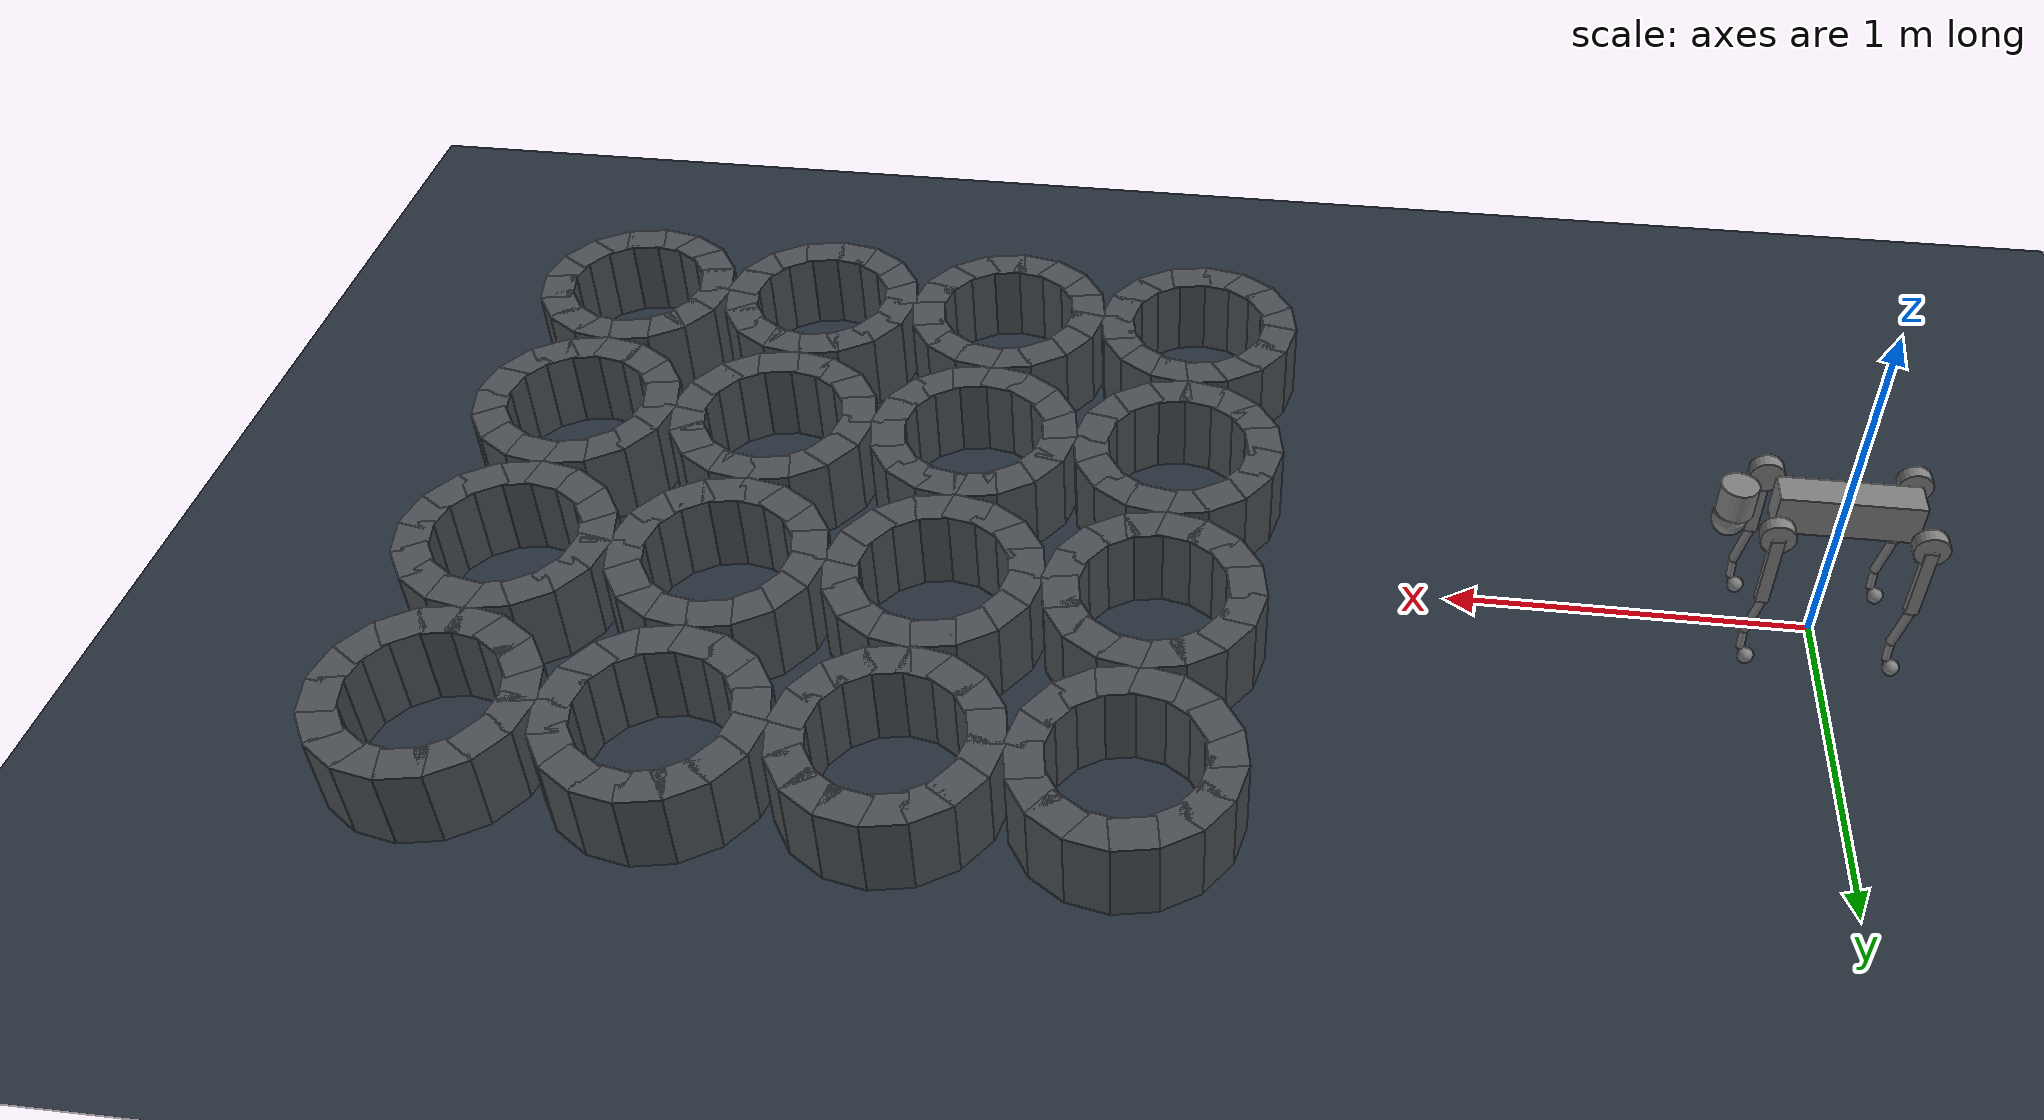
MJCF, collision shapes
<mujoco model="go2 wheel terrain level 9">
  <include file="go2.xml"/>

  <statistic center="2.7 0 0.5" extent="4.0"/>

  <visual>
    <headlight diffuse="0.6 0.6 0.6" ambient="0.1 0.1 0.1" specular="0.3 0.3 0.3"/>
    <rgba haze="0.15 0.25 0.35 1"/>
    <global azimuth="-140" elevation="-20"/>
  </visual>

  <asset>
    <texture type="skybox" builtin="gradient" rgb1="0.3 0.5 0.7" rgb2="0 0 0"
             width="512" height="3072"/>
    <texture type="2d" name="groundplane" builtin="checker" mark="edge"
             rgb1="0.20 0.25 0.30" rgb2="0.10 0.13 0.16" markrgb="0.8 0.8 0.8"
             width="300" height="300"/>
    <material name="groundplane" texture="groundplane" texuniform="true"
              texrepeat="5 5" reflectance="0.0"/>
    <material name="tyre" rgba="0.29 0.31 0.33 1"/>
  </asset>

  <worldbody>
    <light pos="2.7 0 4" dir="0 0 -1" directional="true"/>
    <geom name="floor" type="plane" size="0 0 0.05" material="groundplane"/>

    <!-- tyre 00: centre (1.80, -0.90), height 0.2400 m -->
    <geom type="box" material="tyre" pos="2.045196 -0.851227 0.120000" size="0.059674 0.050000 0.120000" quat="0.634393284 0 0 0.773010453"/>
    <geom type="box" material="tyre" pos="2.007867 -0.761107 0.120000" size="0.059674 0.050000 0.120000" quat="0.471396737 0 0 0.881921264"/>
    <geom type="box" material="tyre" pos="1.938893 -0.692133 0.120000" size="0.059674 0.050000 0.120000" quat="0.290284677 0 0 0.956940336"/>
    <geom type="box" material="tyre" pos="1.848773 -0.654804 0.120000" size="0.059674 0.050000 0.120000" quat="0.098017140 0 0 0.995184727"/>
    <geom type="box" material="tyre" pos="1.751227 -0.654804 0.120000" size="0.059674 0.050000 0.120000" quat="-0.098017140 0 0 0.995184727"/>
    <geom type="box" material="tyre" pos="1.661107 -0.692133 0.120000" size="0.059674 0.050000 0.120000" quat="-0.290284677 0 0 0.956940336"/>
    <geom type="box" material="tyre" pos="1.592133 -0.761107 0.120000" size="0.059674 0.050000 0.120000" quat="-0.471396737 0 0 0.881921264"/>
    <geom type="box" material="tyre" pos="1.554804 -0.851227 0.120000" size="0.059674 0.050000 0.120000" quat="-0.634393284 0 0 0.773010453"/>
    <geom type="box" material="tyre" pos="1.554804 -0.948773 0.120000" size="0.059674 0.050000 0.120000" quat="-0.773010453 0 0 0.634393284"/>
    <geom type="box" material="tyre" pos="1.592133 -1.038893 0.120000" size="0.059674 0.050000 0.120000" quat="-0.881921264 0 0 0.471396737"/>
    <geom type="box" material="tyre" pos="1.661107 -1.107867 0.120000" size="0.059674 0.050000 0.120000" quat="-0.956940336 0 0 0.290284677"/>
    <geom type="box" material="tyre" pos="1.751227 -1.145196 0.120000" size="0.059674 0.050000 0.120000" quat="-0.995184727 0 0 0.098017140"/>
    <geom type="box" material="tyre" pos="1.848773 -1.145196 0.120000" size="0.059674 0.050000 0.120000" quat="-0.995184727 0 0 -0.098017140"/>
    <geom type="box" material="tyre" pos="1.938893 -1.107867 0.120000" size="0.059674 0.050000 0.120000" quat="-0.956940336 0 0 -0.290284677"/>
    <geom type="box" material="tyre" pos="2.007867 -1.038893 0.120000" size="0.059674 0.050000 0.120000" quat="-0.881921264 0 0 -0.471396737"/>
    <geom type="box" material="tyre" pos="2.045196 -0.948773 0.120000" size="0.059674 0.050000 0.120000" quat="-0.773010453 0 0 -0.634393284"/>

    <!-- tyre 01: centre (1.80, -0.30), height 0.2400 m -->
    <geom type="box" material="tyre" pos="2.045196 -0.251227 0.120000" size="0.059674 0.050000 0.120000" quat="0.634393284 0 0 0.773010453"/>
    <geom type="box" material="tyre" pos="2.007867 -0.161107 0.120000" size="0.059674 0.050000 0.120000" quat="0.471396737 0 0 0.881921264"/>
    <geom type="box" material="tyre" pos="1.938893 -0.092133 0.120000" size="0.059674 0.050000 0.120000" quat="0.290284677 0 0 0.956940336"/>
    <geom type="box" material="tyre" pos="1.848773 -0.054804 0.120000" size="0.059674 0.050000 0.120000" quat="0.098017140 0 0 0.995184727"/>
    <geom type="box" material="tyre" pos="1.751227 -0.054804 0.120000" size="0.059674 0.050000 0.120000" quat="-0.098017140 0 0 0.995184727"/>
    <geom type="box" material="tyre" pos="1.661107 -0.092133 0.120000" size="0.059674 0.050000 0.120000" quat="-0.290284677 0 0 0.956940336"/>
    <geom type="box" material="tyre" pos="1.592133 -0.161107 0.120000" size="0.059674 0.050000 0.120000" quat="-0.471396737 0 0 0.881921264"/>
    <geom type="box" material="tyre" pos="1.554804 -0.251227 0.120000" size="0.059674 0.050000 0.120000" quat="-0.634393284 0 0 0.773010453"/>
    <geom type="box" material="tyre" pos="1.554804 -0.348773 0.120000" size="0.059674 0.050000 0.120000" quat="-0.773010453 0 0 0.634393284"/>
    <geom type="box" material="tyre" pos="1.592133 -0.438893 0.120000" size="0.059674 0.050000 0.120000" quat="-0.881921264 0 0 0.471396737"/>
    <geom type="box" material="tyre" pos="1.661107 -0.507867 0.120000" size="0.059674 0.050000 0.120000" quat="-0.956940336 0 0 0.290284677"/>
    <geom type="box" material="tyre" pos="1.751227 -0.545196 0.120000" size="0.059674 0.050000 0.120000" quat="-0.995184727 0 0 0.098017140"/>
    <geom type="box" material="tyre" pos="1.848773 -0.545196 0.120000" size="0.059674 0.050000 0.120000" quat="-0.995184727 0 0 -0.098017140"/>
    <geom type="box" material="tyre" pos="1.938893 -0.507867 0.120000" size="0.059674 0.050000 0.120000" quat="-0.956940336 0 0 -0.290284677"/>
    <geom type="box" material="tyre" pos="2.007867 -0.438893 0.120000" size="0.059674 0.050000 0.120000" quat="-0.881921264 0 0 -0.471396737"/>
    <geom type="box" material="tyre" pos="2.045196 -0.348773 0.120000" size="0.059674 0.050000 0.120000" quat="-0.773010453 0 0 -0.634393284"/>

    <!-- tyre 02: centre (1.80, 0.30), height 0.2400 m -->
    <geom type="box" material="tyre" pos="2.045196 0.348773 0.120000" size="0.059674 0.050000 0.120000" quat="0.634393284 0 0 0.773010453"/>
    <geom type="box" material="tyre" pos="2.007867 0.438893 0.120000" size="0.059674 0.050000 0.120000" quat="0.471396737 0 0 0.881921264"/>
    <geom type="box" material="tyre" pos="1.938893 0.507867 0.120000" size="0.059674 0.050000 0.120000" quat="0.290284677 0 0 0.956940336"/>
    <geom type="box" material="tyre" pos="1.848773 0.545196 0.120000" size="0.059674 0.050000 0.120000" quat="0.098017140 0 0 0.995184727"/>
    <geom type="box" material="tyre" pos="1.751227 0.545196 0.120000" size="0.059674 0.050000 0.120000" quat="-0.098017140 0 0 0.995184727"/>
    <geom type="box" material="tyre" pos="1.661107 0.507867 0.120000" size="0.059674 0.050000 0.120000" quat="-0.290284677 0 0 0.956940336"/>
    <geom type="box" material="tyre" pos="1.592133 0.438893 0.120000" size="0.059674 0.050000 0.120000" quat="-0.471396737 0 0 0.881921264"/>
    <geom type="box" material="tyre" pos="1.554804 0.348773 0.120000" size="0.059674 0.050000 0.120000" quat="-0.634393284 0 0 0.773010453"/>
    <geom type="box" material="tyre" pos="1.554804 0.251227 0.120000" size="0.059674 0.050000 0.120000" quat="-0.773010453 0 0 0.634393284"/>
    <geom type="box" material="tyre" pos="1.592133 0.161107 0.120000" size="0.059674 0.050000 0.120000" quat="-0.881921264 0 0 0.471396737"/>
    <geom type="box" material="tyre" pos="1.661107 0.092133 0.120000" size="0.059674 0.050000 0.120000" quat="-0.956940336 0 0 0.290284677"/>
    <geom type="box" material="tyre" pos="1.751227 0.054804 0.120000" size="0.059674 0.050000 0.120000" quat="-0.995184727 0 0 0.098017140"/>
    <geom type="box" material="tyre" pos="1.848773 0.054804 0.120000" size="0.059674 0.050000 0.120000" quat="-0.995184727 0 0 -0.098017140"/>
    <geom type="box" material="tyre" pos="1.938893 0.092133 0.120000" size="0.059674 0.050000 0.120000" quat="-0.956940336 0 0 -0.290284677"/>
    <geom type="box" material="tyre" pos="2.007867 0.161107 0.120000" size="0.059674 0.050000 0.120000" quat="-0.881921264 0 0 -0.471396737"/>
    <geom type="box" material="tyre" pos="2.045196 0.251227 0.120000" size="0.059674 0.050000 0.120000" quat="-0.773010453 0 0 -0.634393284"/>

    <!-- tyre 03: centre (1.80, 0.90), height 0.2400 m -->
    <geom type="box" material="tyre" pos="2.045196 0.948773 0.120000" size="0.059674 0.050000 0.120000" quat="0.634393284 0 0 0.773010453"/>
    <geom type="box" material="tyre" pos="2.007867 1.038893 0.120000" size="0.059674 0.050000 0.120000" quat="0.471396737 0 0 0.881921264"/>
    <geom type="box" material="tyre" pos="1.938893 1.107867 0.120000" size="0.059674 0.050000 0.120000" quat="0.290284677 0 0 0.956940336"/>
    <geom type="box" material="tyre" pos="1.848773 1.145196 0.120000" size="0.059674 0.050000 0.120000" quat="0.098017140 0 0 0.995184727"/>
    <geom type="box" material="tyre" pos="1.751227 1.145196 0.120000" size="0.059674 0.050000 0.120000" quat="-0.098017140 0 0 0.995184727"/>
    <geom type="box" material="tyre" pos="1.661107 1.107867 0.120000" size="0.059674 0.050000 0.120000" quat="-0.290284677 0 0 0.956940336"/>
    <geom type="box" material="tyre" pos="1.592133 1.038893 0.120000" size="0.059674 0.050000 0.120000" quat="-0.471396737 0 0 0.881921264"/>
    <geom type="box" material="tyre" pos="1.554804 0.948773 0.120000" size="0.059674 0.050000 0.120000" quat="-0.634393284 0 0 0.773010453"/>
    <geom type="box" material="tyre" pos="1.554804 0.851227 0.120000" size="0.059674 0.050000 0.120000" quat="-0.773010453 0 0 0.634393284"/>
    <geom type="box" material="tyre" pos="1.592133 0.761107 0.120000" size="0.059674 0.050000 0.120000" quat="-0.881921264 0 0 0.471396737"/>
    <geom type="box" material="tyre" pos="1.661107 0.692133 0.120000" size="0.059674 0.050000 0.120000" quat="-0.956940336 0 0 0.290284677"/>
    <geom type="box" material="tyre" pos="1.751227 0.654804 0.120000" size="0.059674 0.050000 0.120000" quat="-0.995184727 0 0 0.098017140"/>
    <geom type="box" material="tyre" pos="1.848773 0.654804 0.120000" size="0.059674 0.050000 0.120000" quat="-0.995184727 0 0 -0.098017140"/>
    <geom type="box" material="tyre" pos="1.938893 0.692133 0.120000" size="0.059674 0.050000 0.120000" quat="-0.956940336 0 0 -0.290284677"/>
    <geom type="box" material="tyre" pos="2.007867 0.761107 0.120000" size="0.059674 0.050000 0.120000" quat="-0.881921264 0 0 -0.471396737"/>
    <geom type="box" material="tyre" pos="2.045196 0.851227 0.120000" size="0.059674 0.050000 0.120000" quat="-0.773010453 0 0 -0.634393284"/>

    <!-- tyre 10: centre (2.40, -0.90), height 0.2400 m -->
    <geom type="box" material="tyre" pos="2.645196 -0.851227 0.120000" size="0.059674 0.050000 0.120000" quat="0.634393284 0 0 0.773010453"/>
    <geom type="box" material="tyre" pos="2.607867 -0.761107 0.120000" size="0.059674 0.050000 0.120000" quat="0.471396737 0 0 0.881921264"/>
    <geom type="box" material="tyre" pos="2.538893 -0.692133 0.120000" size="0.059674 0.050000 0.120000" quat="0.290284677 0 0 0.956940336"/>
    <geom type="box" material="tyre" pos="2.448773 -0.654804 0.120000" size="0.059674 0.050000 0.120000" quat="0.098017140 0 0 0.995184727"/>
    <geom type="box" material="tyre" pos="2.351227 -0.654804 0.120000" size="0.059674 0.050000 0.120000" quat="-0.098017140 0 0 0.995184727"/>
    <geom type="box" material="tyre" pos="2.261107 -0.692133 0.120000" size="0.059674 0.050000 0.120000" quat="-0.290284677 0 0 0.956940336"/>
    <geom type="box" material="tyre" pos="2.192133 -0.761107 0.120000" size="0.059674 0.050000 0.120000" quat="-0.471396737 0 0 0.881921264"/>
    <geom type="box" material="tyre" pos="2.154804 -0.851227 0.120000" size="0.059674 0.050000 0.120000" quat="-0.634393284 0 0 0.773010453"/>
    <geom type="box" material="tyre" pos="2.154804 -0.948773 0.120000" size="0.059674 0.050000 0.120000" quat="-0.773010453 0 0 0.634393284"/>
    <geom type="box" material="tyre" pos="2.192133 -1.038893 0.120000" size="0.059674 0.050000 0.120000" quat="-0.881921264 0 0 0.471396737"/>
    <geom type="box" material="tyre" pos="2.261107 -1.107867 0.120000" size="0.059674 0.050000 0.120000" quat="-0.956940336 0 0 0.290284677"/>
    <geom type="box" material="tyre" pos="2.351227 -1.145196 0.120000" size="0.059674 0.050000 0.120000" quat="-0.995184727 0 0 0.098017140"/>
    <geom type="box" material="tyre" pos="2.448773 -1.145196 0.120000" size="0.059674 0.050000 0.120000" quat="-0.995184727 0 0 -0.098017140"/>
    <geom type="box" material="tyre" pos="2.538893 -1.107867 0.120000" size="0.059674 0.050000 0.120000" quat="-0.956940336 0 0 -0.290284677"/>
    <geom type="box" material="tyre" pos="2.607867 -1.038893 0.120000" size="0.059674 0.050000 0.120000" quat="-0.881921264 0 0 -0.471396737"/>
    <geom type="box" material="tyre" pos="2.645196 -0.948773 0.120000" size="0.059674 0.050000 0.120000" quat="-0.773010453 0 0 -0.634393284"/>

    <!-- tyre 11: centre (2.40, -0.30), height 0.2400 m -->
    <geom type="box" material="tyre" pos="2.645196 -0.251227 0.120000" size="0.059674 0.050000 0.120000" quat="0.634393284 0 0 0.773010453"/>
    <geom type="box" material="tyre" pos="2.607867 -0.161107 0.120000" size="0.059674 0.050000 0.120000" quat="0.471396737 0 0 0.881921264"/>
    <geom type="box" material="tyre" pos="2.538893 -0.092133 0.120000" size="0.059674 0.050000 0.120000" quat="0.290284677 0 0 0.956940336"/>
    <geom type="box" material="tyre" pos="2.448773 -0.054804 0.120000" size="0.059674 0.050000 0.120000" quat="0.098017140 0 0 0.995184727"/>
    <geom type="box" material="tyre" pos="2.351227 -0.054804 0.120000" size="0.059674 0.050000 0.120000" quat="-0.098017140 0 0 0.995184727"/>
    <geom type="box" material="tyre" pos="2.261107 -0.092133 0.120000" size="0.059674 0.050000 0.120000" quat="-0.290284677 0 0 0.956940336"/>
    <geom type="box" material="tyre" pos="2.192133 -0.161107 0.120000" size="0.059674 0.050000 0.120000" quat="-0.471396737 0 0 0.881921264"/>
    <geom type="box" material="tyre" pos="2.154804 -0.251227 0.120000" size="0.059674 0.050000 0.120000" quat="-0.634393284 0 0 0.773010453"/>
    <geom type="box" material="tyre" pos="2.154804 -0.348773 0.120000" size="0.059674 0.050000 0.120000" quat="-0.773010453 0 0 0.634393284"/>
    <geom type="box" material="tyre" pos="2.192133 -0.438893 0.120000" size="0.059674 0.050000 0.120000" quat="-0.881921264 0 0 0.471396737"/>
    <geom type="box" material="tyre" pos="2.261107 -0.507867 0.120000" size="0.059674 0.050000 0.120000" quat="-0.956940336 0 0 0.290284677"/>
    <geom type="box" material="tyre" pos="2.351227 -0.545196 0.120000" size="0.059674 0.050000 0.120000" quat="-0.995184727 0 0 0.098017140"/>
    <geom type="box" material="tyre" pos="2.448773 -0.545196 0.120000" size="0.059674 0.050000 0.120000" quat="-0.995184727 0 0 -0.098017140"/>
    <geom type="box" material="tyre" pos="2.538893 -0.507867 0.120000" size="0.059674 0.050000 0.120000" quat="-0.956940336 0 0 -0.290284677"/>
    <geom type="box" material="tyre" pos="2.607867 -0.438893 0.120000" size="0.059674 0.050000 0.120000" quat="-0.881921264 0 0 -0.471396737"/>
    <geom type="box" material="tyre" pos="2.645196 -0.348773 0.120000" size="0.059674 0.050000 0.120000" quat="-0.773010453 0 0 -0.634393284"/>

    <!-- tyre 12: centre (2.40, 0.30), height 0.2400 m -->
    <geom type="box" material="tyre" pos="2.645196 0.348773 0.120000" size="0.059674 0.050000 0.120000" quat="0.634393284 0 0 0.773010453"/>
    <geom type="box" material="tyre" pos="2.607867 0.438893 0.120000" size="0.059674 0.050000 0.120000" quat="0.471396737 0 0 0.881921264"/>
    <geom type="box" material="tyre" pos="2.538893 0.507867 0.120000" size="0.059674 0.050000 0.120000" quat="0.290284677 0 0 0.956940336"/>
    <geom type="box" material="tyre" pos="2.448773 0.545196 0.120000" size="0.059674 0.050000 0.120000" quat="0.098017140 0 0 0.995184727"/>
    <geom type="box" material="tyre" pos="2.351227 0.545196 0.120000" size="0.059674 0.050000 0.120000" quat="-0.098017140 0 0 0.995184727"/>
    <geom type="box" material="tyre" pos="2.261107 0.507867 0.120000" size="0.059674 0.050000 0.120000" quat="-0.290284677 0 0 0.956940336"/>
    <geom type="box" material="tyre" pos="2.192133 0.438893 0.120000" size="0.059674 0.050000 0.120000" quat="-0.471396737 0 0 0.881921264"/>
    <geom type="box" material="tyre" pos="2.154804 0.348773 0.120000" size="0.059674 0.050000 0.120000" quat="-0.634393284 0 0 0.773010453"/>
    <geom type="box" material="tyre" pos="2.154804 0.251227 0.120000" size="0.059674 0.050000 0.120000" quat="-0.773010453 0 0 0.634393284"/>
    <geom type="box" material="tyre" pos="2.192133 0.161107 0.120000" size="0.059674 0.050000 0.120000" quat="-0.881921264 0 0 0.471396737"/>
    <geom type="box" material="tyre" pos="2.261107 0.092133 0.120000" size="0.059674 0.050000 0.120000" quat="-0.956940336 0 0 0.290284677"/>
    <geom type="box" material="tyre" pos="2.351227 0.054804 0.120000" size="0.059674 0.050000 0.120000" quat="-0.995184727 0 0 0.098017140"/>
    <geom type="box" material="tyre" pos="2.448773 0.054804 0.120000" size="0.059674 0.050000 0.120000" quat="-0.995184727 0 0 -0.098017140"/>
    <geom type="box" material="tyre" pos="2.538893 0.092133 0.120000" size="0.059674 0.050000 0.120000" quat="-0.956940336 0 0 -0.290284677"/>
    <geom type="box" material="tyre" pos="2.607867 0.161107 0.120000" size="0.059674 0.050000 0.120000" quat="-0.881921264 0 0 -0.471396737"/>
    <geom type="box" material="tyre" pos="2.645196 0.251227 0.120000" size="0.059674 0.050000 0.120000" quat="-0.773010453 0 0 -0.634393284"/>

    <!-- tyre 13: centre (2.40, 0.90), height 0.2400 m -->
    <geom type="box" material="tyre" pos="2.645196 0.948773 0.120000" size="0.059674 0.050000 0.120000" quat="0.634393284 0 0 0.773010453"/>
    <geom type="box" material="tyre" pos="2.607867 1.038893 0.120000" size="0.059674 0.050000 0.120000" quat="0.471396737 0 0 0.881921264"/>
    <geom type="box" material="tyre" pos="2.538893 1.107867 0.120000" size="0.059674 0.050000 0.120000" quat="0.290284677 0 0 0.956940336"/>
    <geom type="box" material="tyre" pos="2.448773 1.145196 0.120000" size="0.059674 0.050000 0.120000" quat="0.098017140 0 0 0.995184727"/>
    <geom type="box" material="tyre" pos="2.351227 1.145196 0.120000" size="0.059674 0.050000 0.120000" quat="-0.098017140 0 0 0.995184727"/>
    <geom type="box" material="tyre" pos="2.261107 1.107867 0.120000" size="0.059674 0.050000 0.120000" quat="-0.290284677 0 0 0.956940336"/>
    <geom type="box" material="tyre" pos="2.192133 1.038893 0.120000" size="0.059674 0.050000 0.120000" quat="-0.471396737 0 0 0.881921264"/>
    <geom type="box" material="tyre" pos="2.154804 0.948773 0.120000" size="0.059674 0.050000 0.120000" quat="-0.634393284 0 0 0.773010453"/>
    <geom type="box" material="tyre" pos="2.154804 0.851227 0.120000" size="0.059674 0.050000 0.120000" quat="-0.773010453 0 0 0.634393284"/>
    <geom type="box" material="tyre" pos="2.192133 0.761107 0.120000" size="0.059674 0.050000 0.120000" quat="-0.881921264 0 0 0.471396737"/>
    <geom type="box" material="tyre" pos="2.261107 0.692133 0.120000" size="0.059674 0.050000 0.120000" quat="-0.956940336 0 0 0.290284677"/>
    <geom type="box" material="tyre" pos="2.351227 0.654804 0.120000" size="0.059674 0.050000 0.120000" quat="-0.995184727 0 0 0.098017140"/>
    <geom type="box" material="tyre" pos="2.448773 0.654804 0.120000" size="0.059674 0.050000 0.120000" quat="-0.995184727 0 0 -0.098017140"/>
    <geom type="box" material="tyre" pos="2.538893 0.692133 0.120000" size="0.059674 0.050000 0.120000" quat="-0.956940336 0 0 -0.290284677"/>
    <geom type="box" material="tyre" pos="2.607867 0.761107 0.120000" size="0.059674 0.050000 0.120000" quat="-0.881921264 0 0 -0.471396737"/>
    <geom type="box" material="tyre" pos="2.645196 0.851227 0.120000" size="0.059674 0.050000 0.120000" quat="-0.773010453 0 0 -0.634393284"/>

    <!-- tyre 20: centre (3.00, -0.90), height 0.2400 m -->
    <geom type="box" material="tyre" pos="3.245196 -0.851227 0.120000" size="0.059674 0.050000 0.120000" quat="0.634393284 0 0 0.773010453"/>
    <geom type="box" material="tyre" pos="3.207867 -0.761107 0.120000" size="0.059674 0.050000 0.120000" quat="0.471396737 0 0 0.881921264"/>
    <geom type="box" material="tyre" pos="3.138893 -0.692133 0.120000" size="0.059674 0.050000 0.120000" quat="0.290284677 0 0 0.956940336"/>
    <geom type="box" material="tyre" pos="3.048773 -0.654804 0.120000" size="0.059674 0.050000 0.120000" quat="0.098017140 0 0 0.995184727"/>
    <geom type="box" material="tyre" pos="2.951227 -0.654804 0.120000" size="0.059674 0.050000 0.120000" quat="-0.098017140 0 0 0.995184727"/>
    <geom type="box" material="tyre" pos="2.861107 -0.692133 0.120000" size="0.059674 0.050000 0.120000" quat="-0.290284677 0 0 0.956940336"/>
    <geom type="box" material="tyre" pos="2.792133 -0.761107 0.120000" size="0.059674 0.050000 0.120000" quat="-0.471396737 0 0 0.881921264"/>
    <geom type="box" material="tyre" pos="2.754804 -0.851227 0.120000" size="0.059674 0.050000 0.120000" quat="-0.634393284 0 0 0.773010453"/>
    <geom type="box" material="tyre" pos="2.754804 -0.948773 0.120000" size="0.059674 0.050000 0.120000" quat="-0.773010453 0 0 0.634393284"/>
    <geom type="box" material="tyre" pos="2.792133 -1.038893 0.120000" size="0.059674 0.050000 0.120000" quat="-0.881921264 0 0 0.471396737"/>
    <geom type="box" material="tyre" pos="2.861107 -1.107867 0.120000" size="0.059674 0.050000 0.120000" quat="-0.956940336 0 0 0.290284677"/>
    <geom type="box" material="tyre" pos="2.951227 -1.145196 0.120000" size="0.059674 0.050000 0.120000" quat="-0.995184727 0 0 0.098017140"/>
    <geom type="box" material="tyre" pos="3.048773 -1.145196 0.120000" size="0.059674 0.050000 0.120000" quat="-0.995184727 0 0 -0.098017140"/>
    <geom type="box" material="tyre" pos="3.138893 -1.107867 0.120000" size="0.059674 0.050000 0.120000" quat="-0.956940336 0 0 -0.290284677"/>
    <geom type="box" material="tyre" pos="3.207867 -1.038893 0.120000" size="0.059674 0.050000 0.120000" quat="-0.881921264 0 0 -0.471396737"/>
    <geom type="box" material="tyre" pos="3.245196 -0.948773 0.120000" size="0.059674 0.050000 0.120000" quat="-0.773010453 0 0 -0.634393284"/>

    <!-- tyre 21: centre (3.00, -0.30), height 0.2400 m -->
    <geom type="box" material="tyre" pos="3.245196 -0.251227 0.120000" size="0.059674 0.050000 0.120000" quat="0.634393284 0 0 0.773010453"/>
    <geom type="box" material="tyre" pos="3.207867 -0.161107 0.120000" size="0.059674 0.050000 0.120000" quat="0.471396737 0 0 0.881921264"/>
    <geom type="box" material="tyre" pos="3.138893 -0.092133 0.120000" size="0.059674 0.050000 0.120000" quat="0.290284677 0 0 0.956940336"/>
    <geom type="box" material="tyre" pos="3.048773 -0.054804 0.120000" size="0.059674 0.050000 0.120000" quat="0.098017140 0 0 0.995184727"/>
    <geom type="box" material="tyre" pos="2.951227 -0.054804 0.120000" size="0.059674 0.050000 0.120000" quat="-0.098017140 0 0 0.995184727"/>
    <geom type="box" material="tyre" pos="2.861107 -0.092133 0.120000" size="0.059674 0.050000 0.120000" quat="-0.290284677 0 0 0.956940336"/>
    <geom type="box" material="tyre" pos="2.792133 -0.161107 0.120000" size="0.059674 0.050000 0.120000" quat="-0.471396737 0 0 0.881921264"/>
    <geom type="box" material="tyre" pos="2.754804 -0.251227 0.120000" size="0.059674 0.050000 0.120000" quat="-0.634393284 0 0 0.773010453"/>
    <geom type="box" material="tyre" pos="2.754804 -0.348773 0.120000" size="0.059674 0.050000 0.120000" quat="-0.773010453 0 0 0.634393284"/>
    <geom type="box" material="tyre" pos="2.792133 -0.438893 0.120000" size="0.059674 0.050000 0.120000" quat="-0.881921264 0 0 0.471396737"/>
    <geom type="box" material="tyre" pos="2.861107 -0.507867 0.120000" size="0.059674 0.050000 0.120000" quat="-0.956940336 0 0 0.290284677"/>
    <geom type="box" material="tyre" pos="2.951227 -0.545196 0.120000" size="0.059674 0.050000 0.120000" quat="-0.995184727 0 0 0.098017140"/>
    <geom type="box" material="tyre" pos="3.048773 -0.545196 0.120000" size="0.059674 0.050000 0.120000" quat="-0.995184727 0 0 -0.098017140"/>
    <geom type="box" material="tyre" pos="3.138893 -0.507867 0.120000" size="0.059674 0.050000 0.120000" quat="-0.956940336 0 0 -0.290284677"/>
    <geom type="box" material="tyre" pos="3.207867 -0.438893 0.120000" size="0.059674 0.050000 0.120000" quat="-0.881921264 0 0 -0.471396737"/>
    <geom type="box" material="tyre" pos="3.245196 -0.348773 0.120000" size="0.059674 0.050000 0.120000" quat="-0.773010453 0 0 -0.634393284"/>

    <!-- tyre 22: centre (3.00, 0.30), height 0.2400 m -->
    <geom type="box" material="tyre" pos="3.245196 0.348773 0.120000" size="0.059674 0.050000 0.120000" quat="0.634393284 0 0 0.773010453"/>
    <geom type="box" material="tyre" pos="3.207867 0.438893 0.120000" size="0.059674 0.050000 0.120000" quat="0.471396737 0 0 0.881921264"/>
    <geom type="box" material="tyre" pos="3.138893 0.507867 0.120000" size="0.059674 0.050000 0.120000" quat="0.290284677 0 0 0.956940336"/>
    <geom type="box" material="tyre" pos="3.048773 0.545196 0.120000" size="0.059674 0.050000 0.120000" quat="0.098017140 0 0 0.995184727"/>
    <geom type="box" material="tyre" pos="2.951227 0.545196 0.120000" size="0.059674 0.050000 0.120000" quat="-0.098017140 0 0 0.995184727"/>
    <geom type="box" material="tyre" pos="2.861107 0.507867 0.120000" size="0.059674 0.050000 0.120000" quat="-0.290284677 0 0 0.956940336"/>
    <geom type="box" material="tyre" pos="2.792133 0.438893 0.120000" size="0.059674 0.050000 0.120000" quat="-0.471396737 0 0 0.881921264"/>
    <geom type="box" material="tyre" pos="2.754804 0.348773 0.120000" size="0.059674 0.050000 0.120000" quat="-0.634393284 0 0 0.773010453"/>
    <geom type="box" material="tyre" pos="2.754804 0.251227 0.120000" size="0.059674 0.050000 0.120000" quat="-0.773010453 0 0 0.634393284"/>
    <geom type="box" material="tyre" pos="2.792133 0.161107 0.120000" size="0.059674 0.050000 0.120000" quat="-0.881921264 0 0 0.471396737"/>
    <geom type="box" material="tyre" pos="2.861107 0.092133 0.120000" size="0.059674 0.050000 0.120000" quat="-0.956940336 0 0 0.290284677"/>
    <geom type="box" material="tyre" pos="2.951227 0.054804 0.120000" size="0.059674 0.050000 0.120000" quat="-0.995184727 0 0 0.098017140"/>
    <geom type="box" material="tyre" pos="3.048773 0.054804 0.120000" size="0.059674 0.050000 0.120000" quat="-0.995184727 0 0 -0.098017140"/>
    <geom type="box" material="tyre" pos="3.138893 0.092133 0.120000" size="0.059674 0.050000 0.120000" quat="-0.956940336 0 0 -0.290284677"/>
    <geom type="box" material="tyre" pos="3.207867 0.161107 0.120000" size="0.059674 0.050000 0.120000" quat="-0.881921264 0 0 -0.471396737"/>
    <geom type="box" material="tyre" pos="3.245196 0.251227 0.120000" size="0.059674 0.050000 0.120000" quat="-0.773010453 0 0 -0.634393284"/>

    <!-- tyre 23: centre (3.00, 0.90), height 0.2400 m -->
    <geom type="box" material="tyre" pos="3.245196 0.948773 0.120000" size="0.059674 0.050000 0.120000" quat="0.634393284 0 0 0.773010453"/>
    <geom type="box" material="tyre" pos="3.207867 1.038893 0.120000" size="0.059674 0.050000 0.120000" quat="0.471396737 0 0 0.881921264"/>
    <geom type="box" material="tyre" pos="3.138893 1.107867 0.120000" size="0.059674 0.050000 0.120000" quat="0.290284677 0 0 0.956940336"/>
    <geom type="box" material="tyre" pos="3.048773 1.145196 0.120000" size="0.059674 0.050000 0.120000" quat="0.098017140 0 0 0.995184727"/>
    <geom type="box" material="tyre" pos="2.951227 1.145196 0.120000" size="0.059674 0.050000 0.120000" quat="-0.098017140 0 0 0.995184727"/>
    <geom type="box" material="tyre" pos="2.861107 1.107867 0.120000" size="0.059674 0.050000 0.120000" quat="-0.290284677 0 0 0.956940336"/>
    <geom type="box" material="tyre" pos="2.792133 1.038893 0.120000" size="0.059674 0.050000 0.120000" quat="-0.471396737 0 0 0.881921264"/>
    <geom type="box" material="tyre" pos="2.754804 0.948773 0.120000" size="0.059674 0.050000 0.120000" quat="-0.634393284 0 0 0.773010453"/>
    <geom type="box" material="tyre" pos="2.754804 0.851227 0.120000" size="0.059674 0.050000 0.120000" quat="-0.773010453 0 0 0.634393284"/>
    <geom type="box" material="tyre" pos="2.792133 0.761107 0.120000" size="0.059674 0.050000 0.120000" quat="-0.881921264 0 0 0.471396737"/>
    <geom type="box" material="tyre" pos="2.861107 0.692133 0.120000" size="0.059674 0.050000 0.120000" quat="-0.956940336 0 0 0.290284677"/>
    <geom type="box" material="tyre" pos="2.951227 0.654804 0.120000" size="0.059674 0.050000 0.120000" quat="-0.995184727 0 0 0.098017140"/>
    <geom type="box" material="tyre" pos="3.048773 0.654804 0.120000" size="0.059674 0.050000 0.120000" quat="-0.995184727 0 0 -0.098017140"/>
    <geom type="box" material="tyre" pos="3.138893 0.692133 0.120000" size="0.059674 0.050000 0.120000" quat="-0.956940336 0 0 -0.290284677"/>
    <geom type="box" material="tyre" pos="3.207867 0.761107 0.120000" size="0.059674 0.050000 0.120000" quat="-0.881921264 0 0 -0.471396737"/>
    <geom type="box" material="tyre" pos="3.245196 0.851227 0.120000" size="0.059674 0.050000 0.120000" quat="-0.773010453 0 0 -0.634393284"/>

    <!-- tyre 30: centre (3.60, -0.90), height 0.2400 m -->
    <geom type="box" material="tyre" pos="3.845196 -0.851227 0.120000" size="0.059674 0.050000 0.120000" quat="0.634393284 0 0 0.773010453"/>
    <geom type="box" material="tyre" pos="3.807867 -0.761107 0.120000" size="0.059674 0.050000 0.120000" quat="0.471396737 0 0 0.881921264"/>
    <geom type="box" material="tyre" pos="3.738893 -0.692133 0.120000" size="0.059674 0.050000 0.120000" quat="0.290284677 0 0 0.956940336"/>
    <geom type="box" material="tyre" pos="3.648773 -0.654804 0.120000" size="0.059674 0.050000 0.120000" quat="0.098017140 0 0 0.995184727"/>
    <geom type="box" material="tyre" pos="3.551227 -0.654804 0.120000" size="0.059674 0.050000 0.120000" quat="-0.098017140 0 0 0.995184727"/>
    <geom type="box" material="tyre" pos="3.461107 -0.692133 0.120000" size="0.059674 0.050000 0.120000" quat="-0.290284677 0 0 0.956940336"/>
    <geom type="box" material="tyre" pos="3.392133 -0.761107 0.120000" size="0.059674 0.050000 0.120000" quat="-0.471396737 0 0 0.881921264"/>
    <geom type="box" material="tyre" pos="3.354804 -0.851227 0.120000" size="0.059674 0.050000 0.120000" quat="-0.634393284 0 0 0.773010453"/>
    <geom type="box" material="tyre" pos="3.354804 -0.948773 0.120000" size="0.059674 0.050000 0.120000" quat="-0.773010453 0 0 0.634393284"/>
    <geom type="box" material="tyre" pos="3.392133 -1.038893 0.120000" size="0.059674 0.050000 0.120000" quat="-0.881921264 0 0 0.471396737"/>
    <geom type="box" material="tyre" pos="3.461107 -1.107867 0.120000" size="0.059674 0.050000 0.120000" quat="-0.956940336 0 0 0.290284677"/>
    <geom type="box" material="tyre" pos="3.551227 -1.145196 0.120000" size="0.059674 0.050000 0.120000" quat="-0.995184727 0 0 0.098017140"/>
    <geom type="box" material="tyre" pos="3.648773 -1.145196 0.120000" size="0.059674 0.050000 0.120000" quat="-0.995184727 0 0 -0.098017140"/>
    <geom type="box" material="tyre" pos="3.738893 -1.107867 0.120000" size="0.059674 0.050000 0.120000" quat="-0.956940336 0 0 -0.290284677"/>
    <geom type="box" material="tyre" pos="3.807867 -1.038893 0.120000" size="0.059674 0.050000 0.120000" quat="-0.881921264 0 0 -0.471396737"/>
    <geom type="box" material="tyre" pos="3.845196 -0.948773 0.120000" size="0.059674 0.050000 0.120000" quat="-0.773010453 0 0 -0.634393284"/>

    <!-- tyre 31: centre (3.60, -0.30), height 0.2400 m -->
    <geom type="box" material="tyre" pos="3.845196 -0.251227 0.120000" size="0.059674 0.050000 0.120000" quat="0.634393284 0 0 0.773010453"/>
    <geom type="box" material="tyre" pos="3.807867 -0.161107 0.120000" size="0.059674 0.050000 0.120000" quat="0.471396737 0 0 0.881921264"/>
    <geom type="box" material="tyre" pos="3.738893 -0.092133 0.120000" size="0.059674 0.050000 0.120000" quat="0.290284677 0 0 0.956940336"/>
    <geom type="box" material="tyre" pos="3.648773 -0.054804 0.120000" size="0.059674 0.050000 0.120000" quat="0.098017140 0 0 0.995184727"/>
    <geom type="box" material="tyre" pos="3.551227 -0.054804 0.120000" size="0.059674 0.050000 0.120000" quat="-0.098017140 0 0 0.995184727"/>
    <geom type="box" material="tyre" pos="3.461107 -0.092133 0.120000" size="0.059674 0.050000 0.120000" quat="-0.290284677 0 0 0.956940336"/>
    <geom type="box" material="tyre" pos="3.392133 -0.161107 0.120000" size="0.059674 0.050000 0.120000" quat="-0.471396737 0 0 0.881921264"/>
    <geom type="box" material="tyre" pos="3.354804 -0.251227 0.120000" size="0.059674 0.050000 0.120000" quat="-0.634393284 0 0 0.773010453"/>
    <geom type="box" material="tyre" pos="3.354804 -0.348773 0.120000" size="0.059674 0.050000 0.120000" quat="-0.773010453 0 0 0.634393284"/>
    <geom type="box" material="tyre" pos="3.392133 -0.438893 0.120000" size="0.059674 0.050000 0.120000" quat="-0.881921264 0 0 0.471396737"/>
    <geom type="box" material="tyre" pos="3.461107 -0.507867 0.120000" size="0.059674 0.050000 0.120000" quat="-0.956940336 0 0 0.290284677"/>
    <geom type="box" material="tyre" pos="3.551227 -0.545196 0.120000" size="0.059674 0.050000 0.120000" quat="-0.995184727 0 0 0.098017140"/>
    <geom type="box" material="tyre" pos="3.648773 -0.545196 0.120000" size="0.059674 0.050000 0.120000" quat="-0.995184727 0 0 -0.098017140"/>
    <geom type="box" material="tyre" pos="3.738893 -0.507867 0.120000" size="0.059674 0.050000 0.120000" quat="-0.956940336 0 0 -0.290284677"/>
    <geom type="box" material="tyre" pos="3.807867 -0.438893 0.120000" size="0.059674 0.050000 0.120000" quat="-0.881921264 0 0 -0.471396737"/>
    <geom type="box" material="tyre" pos="3.845196 -0.348773 0.120000" size="0.059674 0.050000 0.120000" quat="-0.773010453 0 0 -0.634393284"/>

    <!-- tyre 32: centre (3.60, 0.30), height 0.2400 m -->
    <geom type="box" material="tyre" pos="3.845196 0.348773 0.120000" size="0.059674 0.050000 0.120000" quat="0.634393284 0 0 0.773010453"/>
    <geom type="box" material="tyre" pos="3.807867 0.438893 0.120000" size="0.059674 0.050000 0.120000" quat="0.471396737 0 0 0.881921264"/>
    <geom type="box" material="tyre" pos="3.738893 0.507867 0.120000" size="0.059674 0.050000 0.120000" quat="0.290284677 0 0 0.956940336"/>
    <geom type="box" material="tyre" pos="3.648773 0.545196 0.120000" size="0.059674 0.050000 0.120000" quat="0.098017140 0 0 0.995184727"/>
    <geom type="box" material="tyre" pos="3.551227 0.545196 0.120000" size="0.059674 0.050000 0.120000" quat="-0.098017140 0 0 0.995184727"/>
    <geom type="box" material="tyre" pos="3.461107 0.507867 0.120000" size="0.059674 0.050000 0.120000" quat="-0.290284677 0 0 0.956940336"/>
    <geom type="box" material="tyre" pos="3.392133 0.438893 0.120000" size="0.059674 0.050000 0.120000" quat="-0.471396737 0 0 0.881921264"/>
    <geom type="box" material="tyre" pos="3.354804 0.348773 0.120000" size="0.059674 0.050000 0.120000" quat="-0.634393284 0 0 0.773010453"/>
    <geom type="box" material="tyre" pos="3.354804 0.251227 0.120000" size="0.059674 0.050000 0.120000" quat="-0.773010453 0 0 0.634393284"/>
    <geom type="box" material="tyre" pos="3.392133 0.161107 0.120000" size="0.059674 0.050000 0.120000" quat="-0.881921264 0 0 0.471396737"/>
    <geom type="box" material="tyre" pos="3.461107 0.092133 0.120000" size="0.059674 0.050000 0.120000" quat="-0.956940336 0 0 0.290284677"/>
    <geom type="box" material="tyre" pos="3.551227 0.054804 0.120000" size="0.059674 0.050000 0.120000" quat="-0.995184727 0 0 0.098017140"/>
    <geom type="box" material="tyre" pos="3.648773 0.054804 0.120000" size="0.059674 0.050000 0.120000" quat="-0.995184727 0 0 -0.098017140"/>
    <geom type="box" material="tyre" pos="3.738893 0.092133 0.120000" size="0.059674 0.050000 0.120000" quat="-0.956940336 0 0 -0.290284677"/>
    <geom type="box" material="tyre" pos="3.807867 0.161107 0.120000" size="0.059674 0.050000 0.120000" quat="-0.881921264 0 0 -0.471396737"/>
    <geom type="box" material="tyre" pos="3.845196 0.251227 0.120000" size="0.059674 0.050000 0.120000" quat="-0.773010453 0 0 -0.634393284"/>

    <!-- tyre 33: centre (3.60, 0.90), height 0.2400 m -->
    <geom type="box" material="tyre" pos="3.845196 0.948773 0.120000" size="0.059674 0.050000 0.120000" quat="0.634393284 0 0 0.773010453"/>
    <geom type="box" material="tyre" pos="3.807867 1.038893 0.120000" size="0.059674 0.050000 0.120000" quat="0.471396737 0 0 0.881921264"/>
    <geom type="box" material="tyre" pos="3.738893 1.107867 0.120000" size="0.059674 0.050000 0.120000" quat="0.290284677 0 0 0.956940336"/>
    <geom type="box" material="tyre" pos="3.648773 1.145196 0.120000" size="0.059674 0.050000 0.120000" quat="0.098017140 0 0 0.995184727"/>
    <geom type="box" material="tyre" pos="3.551227 1.145196 0.120000" size="0.059674 0.050000 0.120000" quat="-0.098017140 0 0 0.995184727"/>
    <geom type="box" material="tyre" pos="3.461107 1.107867 0.120000" size="0.059674 0.050000 0.120000" quat="-0.290284677 0 0 0.956940336"/>
    <geom type="box" material="tyre" pos="3.392133 1.038893 0.120000" size="0.059674 0.050000 0.120000" quat="-0.471396737 0 0 0.881921264"/>
    <geom type="box" material="tyre" pos="3.354804 0.948773 0.120000" size="0.059674 0.050000 0.120000" quat="-0.634393284 0 0 0.773010453"/>
    <geom type="box" material="tyre" pos="3.354804 0.851227 0.120000" size="0.059674 0.050000 0.120000" quat="-0.773010453 0 0 0.634393284"/>
    <geom type="box" material="tyre" pos="3.392133 0.761107 0.120000" size="0.059674 0.050000 0.120000" quat="-0.881921264 0 0 0.471396737"/>
    <geom type="box" material="tyre" pos="3.461107 0.692133 0.120000" size="0.059674 0.050000 0.120000" quat="-0.956940336 0 0 0.290284677"/>
    <geom type="box" material="tyre" pos="3.551227 0.654804 0.120000" size="0.059674 0.050000 0.120000" quat="-0.995184727 0 0 0.098017140"/>
    <geom type="box" material="tyre" pos="3.648773 0.654804 0.120000" size="0.059674 0.050000 0.120000" quat="-0.995184727 0 0 -0.098017140"/>
    <geom type="box" material="tyre" pos="3.738893 0.692133 0.120000" size="0.059674 0.050000 0.120000" quat="-0.956940336 0 0 -0.290284677"/>
    <geom type="box" material="tyre" pos="3.807867 0.761107 0.120000" size="0.059674 0.050000 0.120000" quat="-0.881921264 0 0 -0.471396737"/>
    <geom type="box" material="tyre" pos="3.845196 0.851227 0.120000" size="0.059674 0.050000 0.120000" quat="-0.773010453 0 0 -0.634393284"/>

  </worldbody>
</mujoco>

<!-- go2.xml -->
<mujoco model="go2">
  <compiler angle="radian" meshdir="assets" autolimits="true" />

  <option cone="elliptic" impratio="100" />

  <default>
    <default class="go2">
      <geom friction="0.4" margin="0.001" condim="1"/>
      <joint axis="0 1 0" damping="0.1" armature="0.01" frictionloss="0.2"/>
      <motor ctrlrange="-23.7 23.7"/>
      <default class="abduction">
        <joint axis="1 0 0" range="-1.0472 1.0472"/>
      </default>
      <default class="hip">
        <default class="front_hip">
          <joint range="-1.5708 3.4907"/>
        </default>
        <default class="back_hip">
          <joint range="-0.5236 4.5379"/>
        </default>
      </default>
      <default class="knee">
        <joint range="-2.7227 -0.83776"/>
        <motor ctrlrange="-45.43 45.43"/>
      </default>
      <default class="visual">
        <geom type="mesh" contype="0" conaffinity="0" group="2"/>
      </default>
      <default class="collision">
        <geom group="3"/>
        <default class="foot">
          <!-- since priority = 1, foot geom friction will be used for ground contact -->
          <geom size="0.022" pos="-0.002 0 -0.213" priority="1" condim="6"
            friction="0.8 0.02 0.01"/>
        </default>
      </default>
    </default>
  </default>

  <asset>
    <material name="metal" rgba=".9 .95 .95 1" />
    <material name="black" rgba="0 0 0 1" />
    <material name="white" rgba="1 1 1 1" />
    <material name="gray" rgba="0.671705 0.692426 0.774270 1" />

    <mesh file="base_0.obj" />
    <mesh file="base_1.obj" />
    <mesh file="base_2.obj" />
    <mesh file="base_3.obj" />
    <mesh file="base_4.obj" />
    <mesh file="hip_0.obj" />
    <mesh file="hip_1.obj" />
    <mesh file="thigh_0.obj" />
    <mesh file="thigh_1.obj" />
    <mesh file="thigh_mirror_0.obj" />
    <mesh file="thigh_mirror_1.obj" />
    <mesh file="calf_0.obj" />
    <mesh file="calf_1.obj" />
    <mesh file="calf_mirror_0.obj" />
    <mesh file="calf_mirror_1.obj" />
    <mesh file="foot.obj" />
  </asset>

  <worldbody>
    <body name="base_link" pos="0 0 0.445" childclass="go2">
      <inertial pos="0.021112 0 -0.005366" quat="-0.000543471 0.713435 -0.00173769 0.700719"
        mass="6.921"
        diaginertia="0.107027 0.0980771 0.0244531" />
      <freejoint />
      <geom mesh="base_0" material="black" class="visual" />
      <geom mesh="base_1" material="black" class="visual" />
      <geom mesh="base_2" material="black" class="visual" />
      <geom mesh="base_3" material="white" class="visual" />
      <geom mesh="base_4" material="gray" class="visual" />
      <geom size="0.1881 0.04675 0.057" type="box" class="collision" />
      <geom size="0.05 0.045" pos="0.285 0 0.01" type="cylinder" class="collision" />
      <geom size="0.047" pos="0.293 0 -0.06" class="collision" />
      <site name="imu" pos="-0.02557 0 0.04232" />
      <body name="FL_hip" pos="0.1934 0.0465 0">
        <inertial pos="-0.0054 0.00194 -0.000105" quat="0.497014 0.499245 0.505462 0.498237"
          mass="0.678"
          diaginertia="0.00088403 0.000596003 0.000479967" />
        <joint name="FL_hip_joint" class="abduction" />
        <geom mesh="hip_0" material="metal" class="visual" />
        <geom mesh="hip_1" material="gray" class="visual" />
        <geom size="0.046 0.02" pos="0 0.08 0" quat="1 1 0 0" type="cylinder" class="collision" />
        <body name="FL_thigh" pos="0 0.0955 0">
          <inertial pos="-0.00374 -0.0223 -0.0327" quat="0.829533 0.0847635 -0.0200632 0.551623"
            mass="1.152"
            diaginertia="0.00594973 0.00584149 0.000878787" />
          <joint name="FL_thigh_joint" class="front_hip" />
          <geom mesh="thigh_0" material="metal" class="visual" />
          <geom mesh="thigh_1" material="gray" class="visual" />
          <geom size="0.1065 0.01225 0.017" pos="0 0 -0.1065" quat="0.707107 0 0.707107 0"
            type="box" class="collision" />
          <body name="FL_calf" pos="0 0 -0.213">
            <inertial pos="0.00629595 -0.000622121 -0.141417"
              quat="0.710672 0.00154099 -0.00450087 0.703508"
              mass="0.241352" diaginertia="0.0014901 0.00146356 5.31397e-05" />
            <joint name="FL_calf_joint" class="knee" />
            <geom mesh="calf_0" material="gray" class="visual" />
            <geom mesh="calf_1" material="black" class="visual" />
            <geom size="0.012 0.06" pos="0.008 0 -0.06" quat="0.994493 0 -0.104807 0"
              type="cylinder" class="collision" />
            <geom size="0.011 0.0325" pos="0.02 0 -0.148" quat="0.999688 0 0.0249974 0"
              type="cylinder" class="collision" />
            <geom pos="0 0 -0.213" mesh="foot" class="visual" material="black" />
            <geom name="FL" class="foot" />
            <body name="FL_foot" pos="0 0 -0.213" />
          </body>
        </body>
      </body>
      <body name="FR_hip" pos="0.1934 -0.0465 0">
        <inertial pos="-0.0054 -0.00194 -0.000105" quat="0.498237 0.505462 0.499245 0.497014"
          mass="0.678"
          diaginertia="0.00088403 0.000596003 0.000479967" />
        <joint name="FR_hip_joint" class="abduction" />
        <geom mesh="hip_0" material="metal" class="visual" quat="4.63268e-05 1 0 0" />
        <geom mesh="hip_1" material="gray" class="visual" quat="4.63268e-05 1 0 0" />
        <geom size="0.046 0.02" pos="0 -0.08 0" quat="0.707107 0.707107 0 0" type="cylinder"
          class="collision" />
        <body name="FR_thigh" pos="0 -0.0955 0">
          <inertial pos="-0.00374 0.0223 -0.0327" quat="0.551623 -0.0200632 0.0847635 0.829533"
            mass="1.152"
            diaginertia="0.00594973 0.00584149 0.000878787" />
          <joint name="FR_thigh_joint" class="front_hip" />
          <geom mesh="thigh_mirror_0" material="metal" class="visual" />
          <geom mesh="thigh_mirror_1" material="gray" class="visual" />
          <geom size="0.1065 0.01225 0.017" pos="0 0 -0.1065" quat="0.707107 0 0.707107 0"
            type="box" class="collision" />
          <body name="FR_calf" pos="0 0 -0.213">
            <inertial pos="0.00629595 0.000622121 -0.141417"
              quat="0.703508 -0.00450087 0.00154099 0.710672"
              mass="0.241352" diaginertia="0.0014901 0.00146356 5.31397e-05" />
            <joint name="FR_calf_joint" class="knee" />
            <geom mesh="calf_mirror_0" material="gray" class="visual" />
            <geom mesh="calf_mirror_1" material="black" class="visual" />
            <geom size="0.013 0.06" pos="0.01 0 -0.06" quat="0.995004 0 -0.0998334 0"
              type="cylinder" class="collision" />
            <geom size="0.011 0.0325" pos="0.02 0 -0.148" quat="0.999688 0 0.0249974 0"
              type="cylinder" class="collision" />
            <geom pos="0 0 -0.213" mesh="foot" class="visual" material="black" />
            <geom name="FR" class="foot" />
            <body name="FR_foot" pos="0 0 -0.213" />
          </body>
        </body>
      </body>
      <body name="RL_hip" pos="-0.1934 0.0465 0">
        <inertial pos="0.0054 0.00194 -0.000105" quat="0.505462 0.498237 0.497014 0.499245"
          mass="0.678"
          diaginertia="0.00088403 0.000596003 0.000479967" />
        <joint name="RL_hip_joint" class="abduction" />
        <geom mesh="hip_0" material="metal" class="visual" quat="4.63268e-05 0 1 0" />
        <geom mesh="hip_1" material="gray" class="visual" quat="4.63268e-05 0 1 0" />
        <geom size="0.046 0.02" pos="0 0.08 0" quat="0.707107 0.707107 0 0" type="cylinder"
          class="collision" />
        <body name="RL_thigh" pos="0 0.0955 0">
          <inertial pos="-0.00374 -0.0223 -0.0327" quat="0.829533 0.0847635 -0.0200632 0.551623"
            mass="1.152"
            diaginertia="0.00594973 0.00584149 0.000878787" />
          <joint name="RL_thigh_joint" class="back_hip" />
          <geom mesh="thigh_0" material="metal" class="visual" />
          <geom mesh="thigh_1" material="gray" class="visual" />
          <geom size="0.1065 0.01225 0.017" pos="0 0 -0.1065" quat="0.707107 0 0.707107 0"
            type="box" class="collision" />
          <body name="RL_calf" pos="0 0 -0.213">
            <inertial pos="0.00629595 -0.000622121 -0.141417"
              quat="0.710672 0.00154099 -0.00450087 0.703508"
              mass="0.241352" diaginertia="0.0014901 0.00146356 5.31397e-05" />
            <joint name="RL_calf_joint" class="knee" />
            <geom mesh="calf_0" material="gray" class="visual" />
            <geom mesh="calf_1" material="black" class="visual" />
            <geom size="0.013 0.06" pos="0.01 0 -0.06" quat="0.995004 0 -0.0998334 0"
              type="cylinder" class="collision" />
            <geom size="0.011 0.0325" pos="0.02 0 -0.148" quat="0.999688 0 0.0249974 0"
              type="cylinder" class="collision" />
            <geom pos="0 0 -0.213" mesh="foot" class="visual" material="black" />
            <geom name="RL" class="foot" />
            <body name="RL_foot" pos="0 0 -0.213" />
          </body>
        </body>
      </body>
      <body name="RR_hip" pos="-0.1934 -0.0465 0">
        <inertial pos="0.0054 -0.00194 -0.000105" quat="0.499245 0.497014 0.498237 0.505462"
          mass="0.678"
          diaginertia="0.00088403 0.000596003 0.000479967" />
        <joint name="RR_hip_joint" class="abduction" />
        <geom mesh="hip_0" material="metal" class="visual"
          quat="2.14617e-09 4.63268e-05 4.63268e-05 -1" />
        <geom mesh="hip_1" material="gray" class="visual"
          quat="2.14617e-09 4.63268e-05 4.63268e-05 -1" />
        <geom size="0.046 0.02" pos="0 -0.08 0" quat="0.707107 0.707107 0 0" type="cylinder"
          class="collision" />
        <body name="RR_thigh" pos="0 -0.0955 0">
          <inertial pos="-0.00374 0.0223 -0.0327" quat="0.551623 -0.0200632 0.0847635 0.829533"
            mass="1.152"
            diaginertia="0.00594973 0.00584149 0.000878787" />
          <joint name="RR_thigh_joint" class="back_hip" />
          <geom mesh="thigh_mirror_0" material="metal" class="visual" />
          <geom mesh="thigh_mirror_1" material="gray" class="visual" />
          <geom size="0.1065 0.01225 0.017" pos="0 0 -0.1065" quat="0.707107 0 0.707107 0"
            type="box" class="collision" />
          <body name="RR_calf" pos="0 0 -0.213">
            <inertial pos="0.00629595 0.000622121 -0.141417"
              quat="0.703508 -0.00450087 0.00154099 0.710672"
              mass="0.241352" diaginertia="0.0014901 0.00146356 5.31397e-05" />
            <joint name="RR_calf_joint" class="knee" />
            <geom mesh="calf_mirror_0" material="gray" class="visual" />
            <geom mesh="calf_mirror_1" material="black" class="visual" />
            <geom size="0.013 0.06" pos="0.01 0 -0.06" quat="0.995004 0 -0.0998334 0"
              type="cylinder" class="collision" />
            <geom size="0.011 0.0325" pos="0.02 0 -0.148" quat="0.999688 0 0.0249974 0"
              type="cylinder" class="collision" />
            <geom pos="0 0 -0.213" mesh="foot" class="visual" material="black" />
            <geom name="RR" class="foot" />
            <body name="RR_foot" pos="0 0 -0.213" />
          </body>
        </body>
      </body>
    </body>
  </worldbody>

  <actuator>
    <motor class="abduction" name="FR_hip" joint="FR_hip_joint" />
    <motor class="hip" name="FR_thigh" joint="FR_thigh_joint" />
    <motor class="knee" name="FR_calf" joint="FR_calf_joint" />
    <motor class="abduction" name="FL_hip" joint="FL_hip_joint" />
    <motor class="hip" name="FL_thigh" joint="FL_thigh_joint" />
    <motor class="knee" name="FL_calf" joint="FL_calf_joint" />
    <motor class="abduction" name="RR_hip" joint="RR_hip_joint" />
    <motor class="hip" name="RR_thigh" joint="RR_thigh_joint" />
    <motor class="knee" name="RR_calf" joint="RR_calf_joint" />
    <motor class="abduction" name="RL_hip" joint="RL_hip_joint" />
    <motor class="hip" name="RL_thigh" joint="RL_thigh_joint" />
    <motor class="knee" name="RL_calf" joint="RL_calf_joint" />
  </actuator>

  <sensor>
    <jointpos name="FR_hip_pos" joint="FR_hip_joint" />
    <jointpos name="FR_thigh_pos" joint="FR_thigh_joint" />
    <jointpos name="FR_calf_pos" joint="FR_calf_joint" />
    <jointpos name="FL_hip_pos" joint="FL_hip_joint" />
    <jointpos name="FL_thigh_pos" joint="FL_thigh_joint" />
    <jointpos name="FL_calf_pos" joint="FL_calf_joint" />
    <jointpos name="RR_hip_pos" joint="RR_hip_joint" />
    <jointpos name="RR_thigh_pos" joint="RR_thigh_joint" />
    <jointpos name="RR_calf_pos" joint="RR_calf_joint" />
    <jointpos name="RL_hip_pos" joint="RL_hip_joint" />
    <jointpos name="RL_thigh_pos" joint="RL_thigh_joint" />
    <jointpos name="RL_calf_pos" joint="RL_calf_joint" />

    <jointvel name="FR_hip_vel" joint="FR_hip_joint" />
    <jointvel name="FR_thigh_vel" joint="FR_thigh_joint" />
    <jointvel name="FR_calf_vel" joint="FR_calf_joint" />
    <jointvel name="FL_hip_vel" joint="FL_hip_joint" />
    <jointvel name="FL_thigh_vel" joint="FL_thigh_joint" />
    <jointvel name="FL_calf_vel" joint="FL_calf_joint" />
    <jointvel name="RR_hip_vel" joint="RR_hip_joint" />
    <jointvel name="RR_thigh_vel" joint="RR_thigh_joint" />
    <jointvel name="RR_calf_vel" joint="RR_calf_joint" />
    <jointvel name="RL_hip_vel" joint="RL_hip_joint" />
    <jointvel name="RL_thigh_vel" joint="RL_thigh_joint" />
    <jointvel name="RL_calf_vel" joint="RL_calf_joint" />

    <jointactuatorfrc name="FR_hip_torque" joint="FR_hip_joint" noise="0.01" />
    <jointactuatorfrc name="FR_thigh_torque" joint="FR_thigh_joint" noise="0.01" />
    <jointactuatorfrc name="FR_calf_torque" joint="FR_calf_joint" noise="0.01" />
    <jointactuatorfrc name="FL_hip_torque" joint="FL_hip_joint" noise="0.01" />
    <jointactuatorfrc name="FL_thigh_torque" joint="FL_thigh_joint" noise="0.01" />
    <jointactuatorfrc name="FL_calf_torque" joint="FL_calf_joint" noise="0.01" />
    <jointactuatorfrc name="RR_hip_torque" joint="RR_hip_joint" noise="0.01" />
    <jointactuatorfrc name="RR_thigh_torque" joint="RR_thigh_joint" noise="0.01" />
    <jointactuatorfrc name="RR_calf_torque" joint="RR_calf_joint" noise="0.01" />
    <jointactuatorfrc name="RL_hip_torque" joint="RL_hip_joint" noise="0.01" />
    <jointactuatorfrc name="RL_thigh_torque" joint="RL_thigh_joint" noise="0.01" />
    <jointactuatorfrc name="RL_calf_torque" joint="RL_calf_joint" noise="0.01" />

    <framequat name="imu_quat" objtype="site" objname="imu" />
    <gyro name="imu_gyro" site="imu" />
    <accelerometer name="imu_acc" site="imu" />

    <framepos name="frame_pos" objtype="site" objname="imu" />
    <framelinvel name="frame_vel" objtype="site" objname="imu" />
  </sensor>

  <keyframe>
    <key name="home" qpos="0 0 0.27 1 0 0 0 0 0.9 -1.8 0 0.9 -1.8 0 0.9 -1.8 0 0.9 -1.8"
      ctrl="0 0.9 -1.8 0 0.9 -1.8 0 0.9 -1.8 0 0.9 -1.8" />
  </keyframe>
</mujoco>
